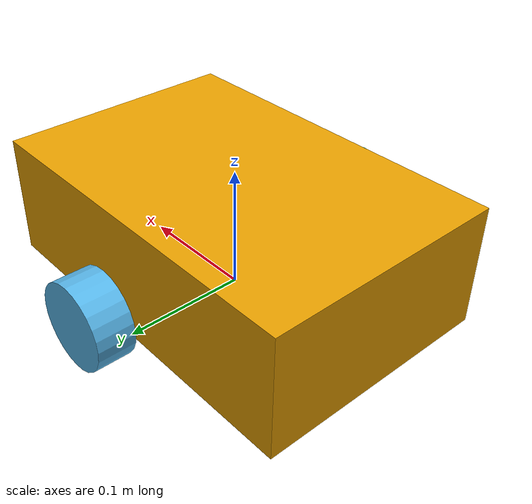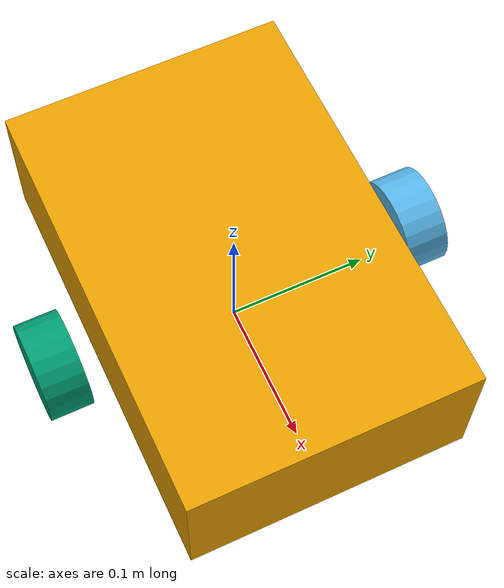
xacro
<?xml version="1.0"?>
<robot name="diffbot" xmlns:xacro="http://www.ros.org/wiki/xacro">

  <!-- ================= PARAMETERS ================= -->
  <xacro:property name="wheel_radius" value="0.034"/>
  <xacro:property name="wheel_separation" value="0.264"/>
  <xacro:property name="wheel_width" value="0.03"/>
  <xacro:property name="half_wheel_sep" value="${wheel_separation/2.0}"/>

  <!-- ================= BASE LINK ================= -->
  <link name="base_link">
    <visual>
      <geometry>
        <box size="0.3 0.2 0.1"/>
      </geometry>
      <origin xyz="0 0 0.05"/>
    </visual>
  </link>

  <!-- ================= LEFT WHEEL ================= -->
  <link name="left_wheel">
    <visual>
      <geometry>
        <cylinder radius="${wheel_radius}" length="${wheel_width}"/>
      </geometry>
      <origin xyz="0 0 0" rpy="1.5707 0 0"/>
    </visual>
  </link>

  <joint name="left_wheel_joint" type="continuous">
    <parent link="base_link"/>
    <child link="left_wheel"/>
    <!-- y = + half separation -->
    <origin xyz="0 ${half_wheel_sep} ${wheel_radius}" rpy="0 0 0"/>
    <axis xyz="0 1 0"/>
  </joint>

  <!-- ================= RIGHT WHEEL ================= -->
  <link name="right_wheel">
    <visual>
      <geometry>
        <cylinder radius="${wheel_radius}" length="${wheel_width}"/>
      </geometry>
      <origin xyz="0 0 0" rpy="1.5707 0 0"/>
    </visual>
  </link>

  <joint name="right_wheel_joint" type="continuous">
    <parent link="base_link"/>
    <child link="right_wheel"/>
    <!-- y = - half separation -->
    <origin xyz="0 -${half_wheel_sep} ${wheel_radius}" rpy="0 0 0"/>
    <axis xyz="0 1 0"/>
  </joint>

  <!-- ================= ROS2 CONTROL ================= -->
  <ros2_control name="TeensySystem" type="system">
    <hardware>
      <plugin>diffbot_hardware/DiffBotSystemHardware</plugin>
      <param name="serial_port">/dev/ttyACM0</param>
      <param name="baudrate">115200</param>
    </hardware>

    <joint name="left_wheel_joint">
      <command_interface name="velocity"/>
      <state_interface name="position"/>
      <state_interface name="velocity"/>
    </joint>

    <joint name="right_wheel_joint">
      <command_interface name="velocity"/>
      <state_interface name="position"/>
      <state_interface name="velocity"/>
    </joint>
  </ros2_control>

</robot>
